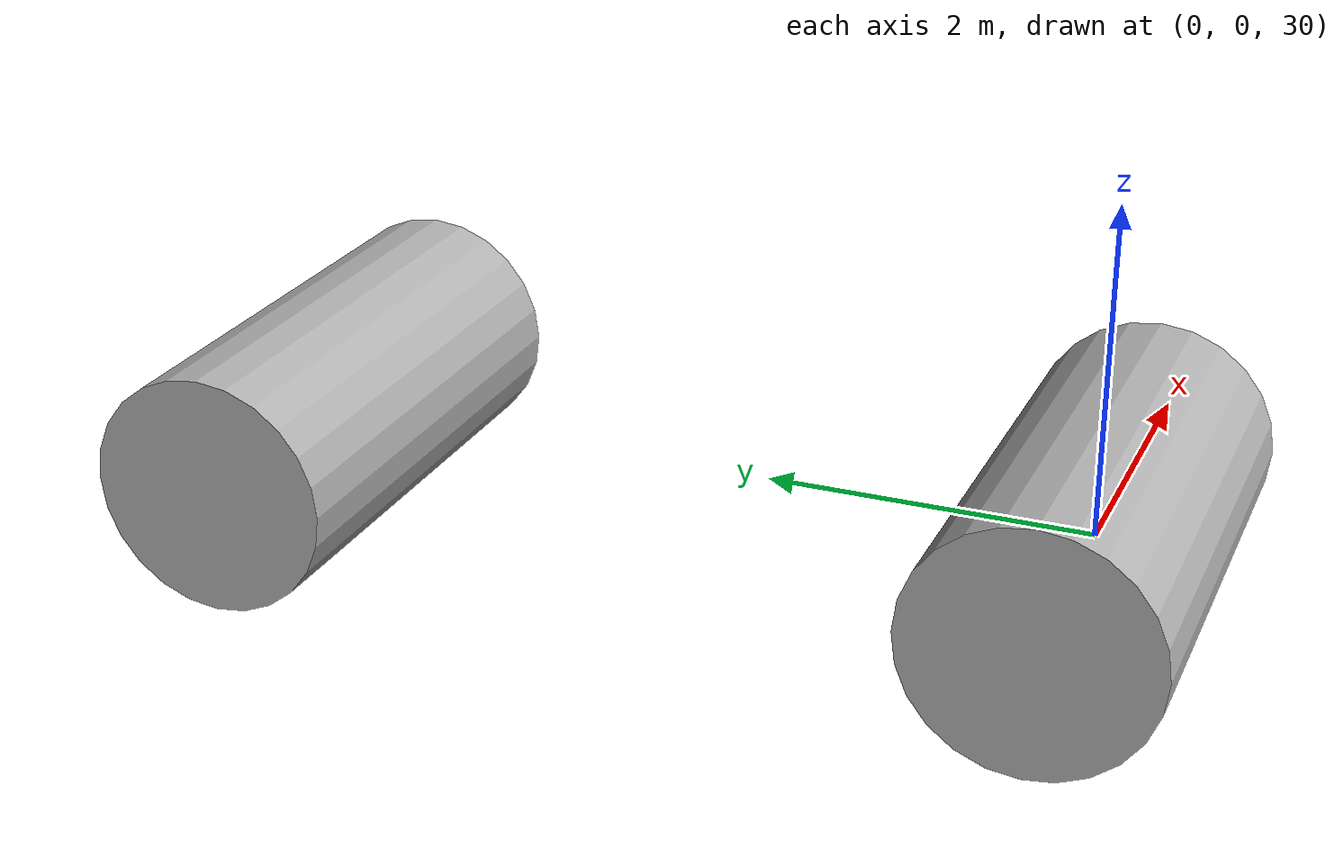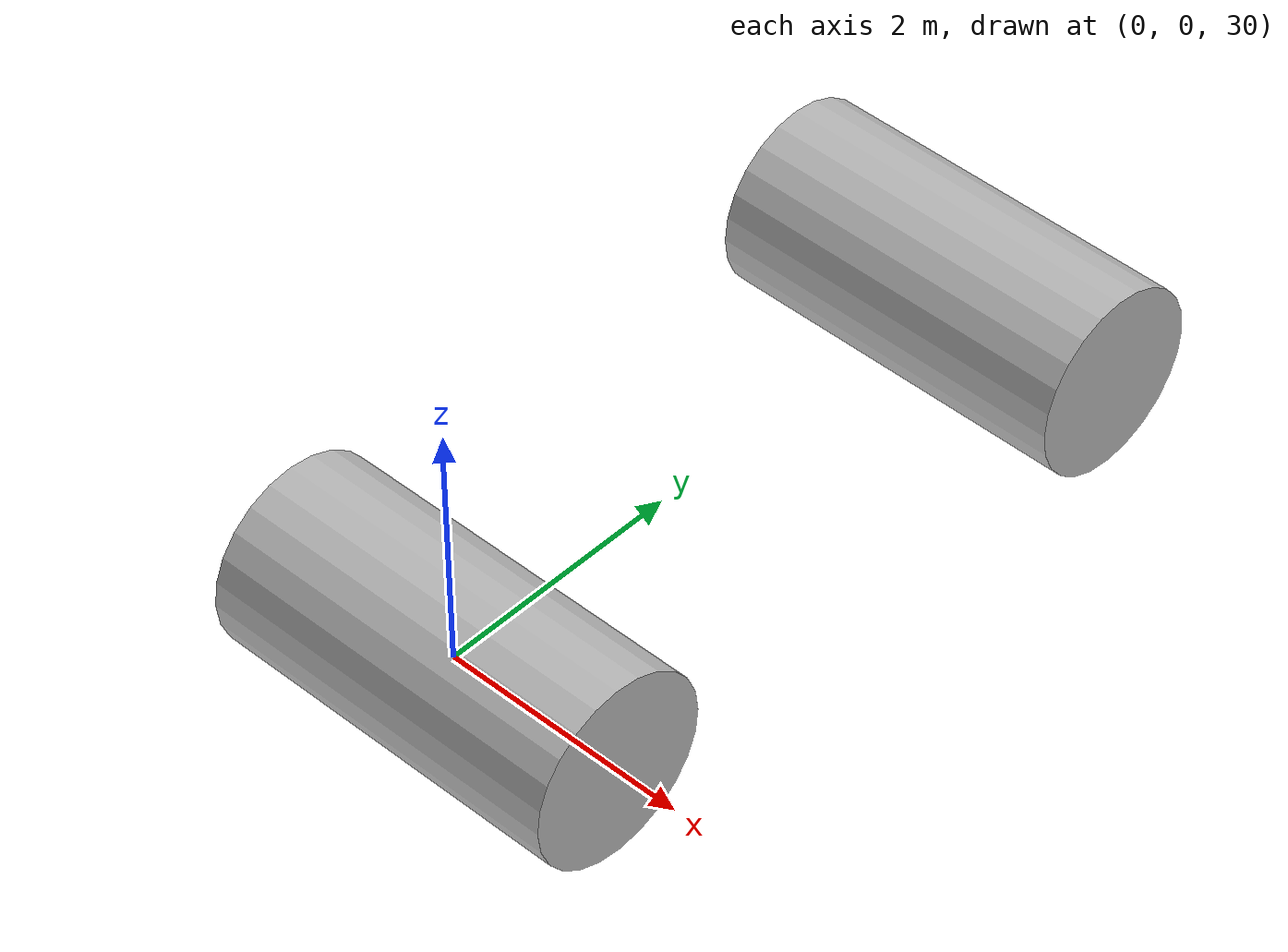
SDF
<?xml version="1.0" ?>
<sdf version="1.6">
  <world name="lighter_than_air_dynamics">
    <plugin
      filename="gz-sim-apply-link-wrench-system"
      name="gz::sim::systems::ApplyLinkWrench">
    </plugin>

   <physics name="1ms" type="ode">
      <max_step_size>0.001</max_step_size>
      <!-- Zero to run as fast as possible -->
      <real_time_factor>0</real_time_factor>
    </physics>

    <gravity>0 0 0</gravity>

    <plugin
      filename="gz-sim-physics-system"
      name="gz::sim::systems::Physics">
    </plugin>

    <model name="hull">
      <pose>0 0 30 0 0 0</pose>
      <link name="hull_link">
        <pose>0 0 0 0 0 0</pose>
        <inertial>
        <mass>5.815677050417254</mass>
          <inertia>
            <ixx>0.0069861272</ixx>
            <ixy>0</ixy>
            <ixz>0</ixz>
            <iyy>0.1292433532</iyy>
            <iyz>0</iyz>
            <izz>0.1292433532</izz>
          </inertia>
          <fluid_added_mass>

            <xx>0.0256621271421697</xx>
            <xy>0.0</xy>
            <xz>0.0</xz>
            <xp>0.0</xp>
            <xq>0.0</xq>
            <xr>0.0</xr>

            <yy>0.538639694339695</yy>
            <yz>0.0</yz>
            <yp>0.0</yp>
            <yq>0.0</yq>
            <yr>0.189291512412098</yr>

            <zz>0.538639694339695</zz>
            <zp>0.0</zp>
            <zq>-0.189291512412098</zq>
            <zr>0.0</zr>

            <pp>0.000160094457776136</pp>
            <pq>0.0</pq>
            <pr>0.0</pr>

            <qq>2.02957381640185</qq>
            <qr>0.0</qr>

            <rr>2.02957381640185</rr>

          </fluid_added_mass>
        </inertial>

        <visual name='hull_visual'>
        <pose>0 0 0 0 1.5707963267948966 0 </pose>
          <geometry>
            <cylinder>
              <length>3</length>
              <radius>0.75</radius>
            </cylinder>
          </geometry>
        </visual>
        <collision name='hull_collision'>
        <pose>0 0 0 0 1.5707963267948966 0 </pose>
          <geometry>
            <cylinder>
              <length>3</length>
              <radius>0.75</radius>
            </cylinder>
          </geometry>
        </collision>
      </link>

      <plugin
        filename="gz-sim-lighter_than_air_dynamics-system"
        name="gz::sim::systems::LighterThanAirDynamics">
        <link_name>hull_link</link_name>
        <air_density>1.2754</air_density>
        <force_inviscid_coeff>-0.06425096870274437</force_inviscid_coeff>
        <force_viscous_coeff>0.07237374316691345</force_viscous_coeff>
        <moment_inviscid_coeff>0.08506449448628849</moment_inviscid_coeff>
        <moment_viscous_coeff>-0.0941254292661463</moment_viscous_coeff>
        <axial_drag_coeff>0.1</axial_drag_coeff>
        <eps_v>2.4389047</eps_v>
      </plugin>
    </model>

    <model name="hull2">
      <pose>0 5 30 0 0 0</pose>
      <link name="hull2_link">
        <pose>0 0 0 0 0 0</pose>
        <inertial>
        <mass>5.815677050417254</mass>
          <inertia>
            <ixx>0.0069861272</ixx>
            <ixy>0</ixy>
            <ixz>0</ixz>
            <iyy>0.1292433532</iyy>
            <iyz>0</iyz>
            <izz>0.1292433532</izz>
          </inertia>
        </inertial>

        <visual name='hull2_visual'>
        <pose>0 0 0 0 1.5707963267948966 0 </pose>
          <geometry>
            <cylinder>
              <length>3</length>
              <radius>0.75</radius>
            </cylinder>
          </geometry>
        </visual>
        <collision name='hull2_collision'>
        <pose>0 0 0 0 1.5707963267948966 0 </pose>
          <geometry>
            <cylinder>
              <length>3</length>
              <radius>0.75</radius>
            </cylinder>
          </geometry>
        </collision>
      </link>
    </model>

  </world>
</sdf>
